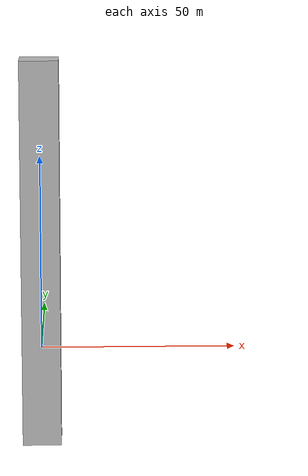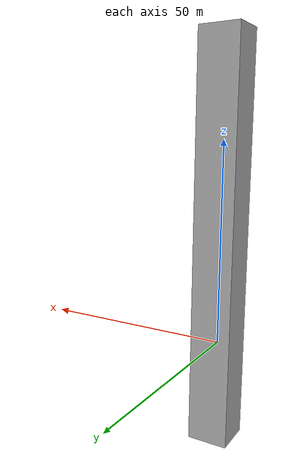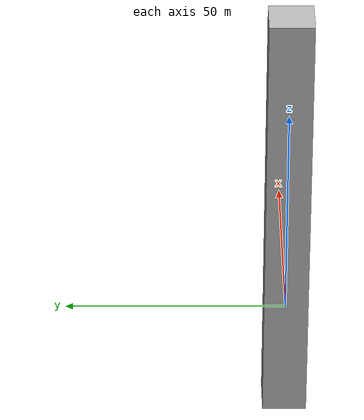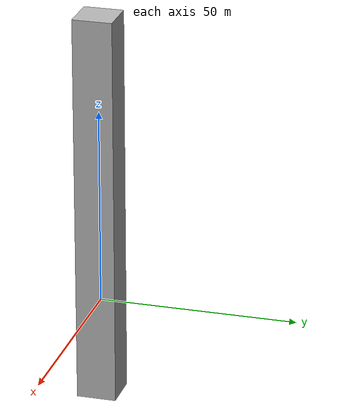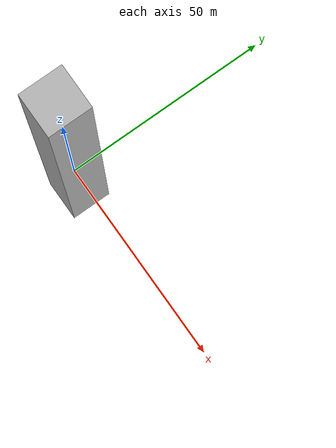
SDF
<?xml version='1.0'?>
<sdf version="1.6">
  <model name="tall_cuboid">
    <static>true</static>
    <link name="link">
      <pose>0 0 25 0 0 0</pose>
      <collision name="collision">
        <geometry>
          <box>
            <size>10 10 100</size>
          </box>
        </geometry>
      </collision>
      <visual name='visual'>
        <geometry>
          <box>
            <size>10 10 100</size>
          </box>
        </geometry>
      </visual>
    </link>
  </model>
</sdf>
